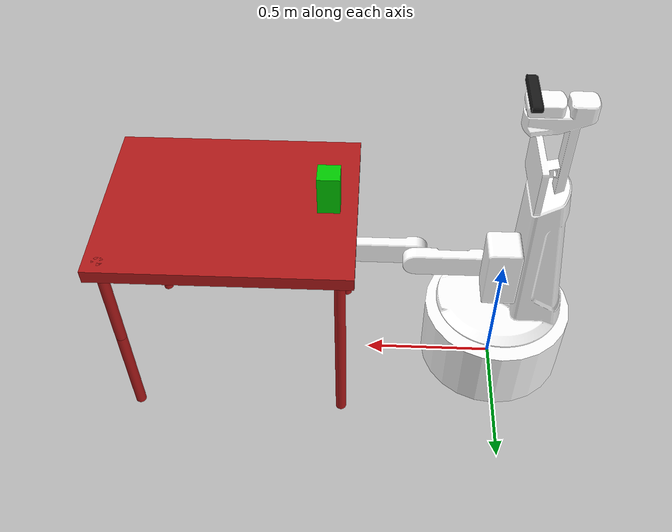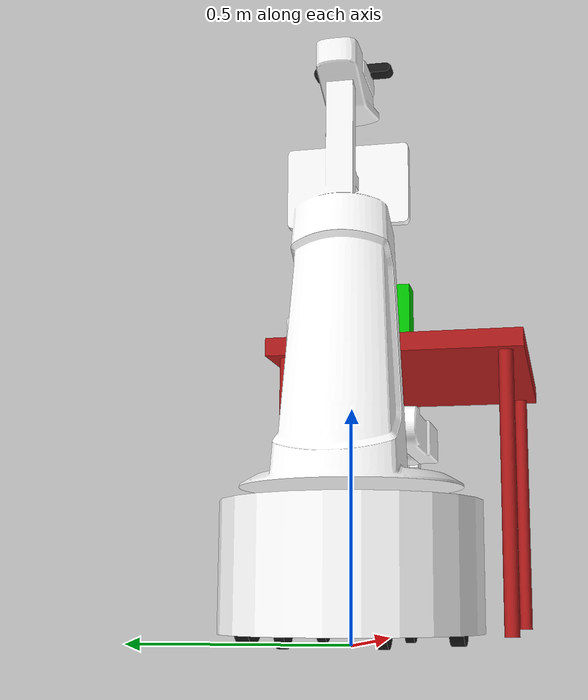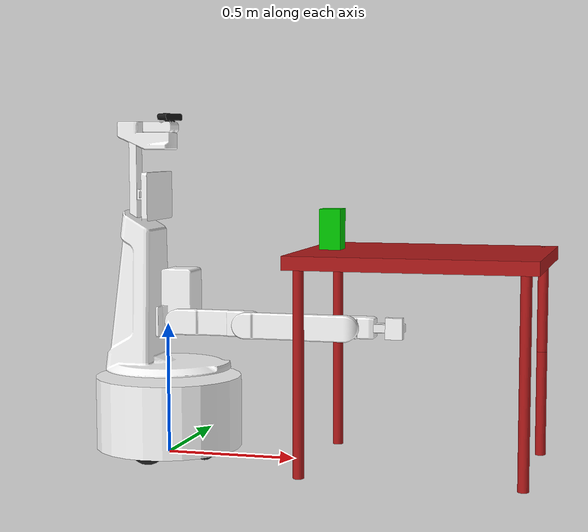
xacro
<?xml version="1.0" ?>
<robot name="korus" xmlns:xacro="http://www.ros.org/wiki/xacro">
  <xacro:include filename="$(find korus_meta)/resources/urdf/components/omni_drive_base.urdf.xacro"/>
  <xacro:include filename="$(find korus_meta)/resources/urdf/components/upper_body.urdf.xacro"/>
  <xacro:include filename="$(find korus_meta)/resources/urdf/components/arm.urdf.xacro"/>
  <xacro:include filename="$(find korus_meta)/resources/urdf/environment/table.urdf.xacro"/>

  <!-- ************************ Base model ************************* -->
  <xacro:omni_drive_base parent="local_manip_start" body_mount_link="base_link"/>

  <!-- ************************ Body model ************************* -->
  <xacro:upper_body body_mount_link="base_link" arm_mount_link="torso_lift_link"/>

  <!-- ************************ Arm model ************************* -->
  <xacro:arm arm_mount_link="torso_lift_link"/>

  <!-- ************************ Table model ************************* -->
  <xacro:table parent="local_manip_start"/>
</robot>

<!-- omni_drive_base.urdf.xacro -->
<robot xmlns:xacro="http://www.ros.org/wiki/xacro">
  <xacro:include filename="$(find korus_meta)/resources/urdf/components/materials.urdf.xacro"/>

  <!-- ************************** Properties ************************** -->
  <xacro:property name="wheel_bias" value="0.450"/>
  <xacro:property name="wheel_radius" value="0.075"/>
  <xacro:property name="caster_wheel_bias" value="0.2"/>
  <xacro:property name="caster_wheel_radius" value="0.040"/>

  <!-- ************************** Wheel macro ************************** -->
  <xacro:macro name="wheel" params="name parent length radius off_x off_y off_z type">
    <joint name="${name}_joint" type="${type}">
      <parent link="${parent}"/>
      <child link="${name}_link"/>
      <origin rpy="0 0 ${pi/2}" xyz="${off_x} ${off_y} ${off_z}"/>
    </joint>
    <link name="${name}_link">
      <visual>
        <geometry>
          <cylinder length="${length}" radius="${radius}"/>
        </geometry>
        <origin rpy="0 ${pi/2} 0" xyz="0 0 0"/>
        <material name="black">
          <color rgba="0.1 0.1 0.1 1"/>
        </material>
      </visual>
    </link>
  </xacro:macro>

  <!-- ************************** Differential drive base macro ************************** -->
  <xacro:macro name="omni_drive_base" params="parent body_mount_link">
    <link name="${parent}"/>
    <joint name="base_position_x" type="prismatic">
      <parent link="${parent}"/>
      <child link="base_position_x_link"/>
      <origin rpy="0 0 0" xyz="0.0 0.0 0.0"/>
      <axis xyz="1 0 0"/>
      <limit effort="10" lower="-2.0" upper="2.0" velocity="1.0"/>
    </joint>
    <link name="base_position_x_link"/>
    <joint name="base_position_y" type="prismatic">
      <parent link="base_position_x_link"/>
      <child link="base_position_y_link"/>
      <origin rpy="0 0 0" xyz="0.0 0.0 0.0"/>
      <axis xyz="0 1 0"/>
      <limit effort="10" lower="-2.0" upper="2.0" velocity="1.0"/>
    </joint>
    <link name="base_position_y_link"/>
    <joint name="base_heading" type="revolute">
      <parent link="base_position_y_link"/>
      <child link="${body_mount_link}"/>
      <origin rpy="0 0 0" xyz="0.0 0.0 0.075"/>
      <axis xyz="0 0 1"/>
      <limit effort="10" lower="-${pi}" upper="${pi}" velocity="1.0"/>
    </joint>
    <link name="${body_mount_link}">
      <visual>
        <origin rpy="0 0 0" xyz="0.0 0 0.0875"/>
         <geometry>
          <cylinder length="0.275" radius="0.280"/>
        </geometry>
        <xacro:insert_block name="material_white" />
      </visual>
      <collision>
        <origin rpy="0 0 0" xyz="0.0 0 0.0875"/>
         <geometry>
           <cylinder length="0.275" radius="0.280"/>
         </geometry>
         <xacro:insert_block name="material_white" />
      </collision>
    </link>
    <xacro:wheel name="wheel_left" parent="${body_mount_link}" length="0.03" radius="${wheel_radius}" off_x="0.0" off_y="${wheel_bias/2}" off_z="0.0" type="fixed"/>
    <xacro:wheel name="wheel_right" parent="${body_mount_link}" length="0.03" radius="${wheel_radius}" off_x="0.0" off_y="-${wheel_bias/2}" off_z="0.0" type="fixed"/>
    <xacro:wheel name="caster_front_left" parent="${body_mount_link}" length="0.02" radius="${caster_wheel_radius}" off_x="0.18" off_y="${caster_wheel_bias/2}" off_z="-0.035" type="fixed"/>
    <xacro:wheel name="caster_front_right" parent="${body_mount_link}" length="0.02" radius="${caster_wheel_radius}" off_x="0.18" off_y="-${caster_wheel_bias/2}" off_z="-0.035" type="fixed"/>
    <xacro:wheel name="caster_back_left" parent="${body_mount_link}" length="0.02" radius="${caster_wheel_radius}" off_x="-0.18" off_y="${caster_wheel_bias/2}" off_z="-0.035" type="fixed"/>
    <xacro:wheel name="caster_back_right" parent="${body_mount_link}" length="0.02" radius="${caster_wheel_radius}" off_x="-0.18" off_y="-${caster_wheel_bias/2}" off_z="-0.035" type="fixed"/>
  </xacro:macro>
</robot>

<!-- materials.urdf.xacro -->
<robot xmlns:xacro="http://www.ros.org/wiki/xacro">

	<!-- ************************ Properties ************************** -->
	<xacro:property name="pi" value="3.1415926535897931" />
	<xacro:property name="rad" value="0.0174532925199" /> <!-- pi/180 -->
	<xacro:property name="material_white">
	  <material name="white">
	    <color rgba="1 1 1 1"/>
	  </material>
	</xacro:property>
	<xacro:property name="material_orange">
	  <material name="orange">
	    <color rgba="1.0 0.7 0.0 1"/>
	  </material>
	</xacro:property>
	<xacro:property name="material_red">
	  <material name="red">
	    <color rgba="1.0 0.0 0.0 1"/>
	  </material>
	</xacro:property>
	<xacro:property name="material_grey_blue">
	  <material name="grey_blue">
	    <color rgba="0.4 0.4 1.0 1"/>
	  </material>
	</xacro:property>
	<xacro:property name="material_blue">
	  <material name="blue">
	    <color rgba="0.0 0.0 1.0 1"/>
	  </material>
	</xacro:property>
	<xacro:property name="material_green">
	  <material name="green">
	    <color rgba="0 .8 0 1"/>
	  </material>
	</xacro:property>
	<xacro:property name="material_grey">
	  <material name="grey">
	    <color rgba="0.7 0.7 0.7 1.0"/>
	  </material>
	</xacro:property>
	<xacro:property name="material_black">
	  <material name="black">
	    <color rgba="0.1 0.1 0.1 1"/>
	  </material>
	</xacro:property>
</robot>

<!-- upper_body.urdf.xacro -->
<robot xmlns:xacro="http://www.ros.org/wiki/xacro">
  <xacro:include filename="$(find korus_meta)/resources/urdf/components/materials.urdf.xacro"/>

  <!-- ************************** Robot body macro ************************** -->
  <xacro:macro name="upper_body" params="body_mount_link arm_mount_link">

    <!-- ************************** Torso *************************** -->
	  <joint name="torso_turn" type="revolute">
	    <parent link="${body_mount_link}"/>
	    <child link="torso_link"/>
	    <origin rpy="0 0 0" xyz="0.0 0.0 0.2665"/>
	    <axis xyz="0 0 1"/>
	    <limit effort="205.0" lower="-${186*rad}" upper="${160*rad}" velocity="${88.7*rad}"/>
	  </joint>
	  <link name="torso_link">
	    <visual>
	      <geometry>
          <mesh filename="package://korus_meta/resources/meshes/turret.dae" />
	      </geometry>
        <origin xyz="0.0 0.0 0.45885" rpy="0 0 0"/>
	      <xacro:insert_block name="material_white" />
	    </visual>
      <collision> <!-- torso turn disk -->
         <geometry>
          <cylinder length="0.025" radius="0.278"/>
        </geometry>
        <origin xyz="0.0 0.0 0.0" rpy="0 0 0"/>
      </collision>
      <collision> <!-- back -->
        <geometry>
           <box size="0.204 0.25746 0.57888" />
        </geometry>
        <origin xyz="-0.13786 0.0 0.30194" rpy="0 0 0"/>
      </collision>
      <collision> <!-- neck -->
        <geometry>
          <box size="0.030 0.060 0.23262"/>
        </geometry>
        <origin xyz="-0.12536  0.0 0.70769" rpy="0 0 0"/>
      </collision>
      <collision> <!-- tablet -->
        <geometry>
          <box size="0.022 0.270 0.1812"/>
        </geometry>
        <origin xyz="-0.04036 0.0 0.6495" rpy="0 0 0"/>
      </collision>
      <collision> <!-- head -->
        <geometry>
          <box size="0.227 0.11872 0.0645" />
        </geometry>
        <origin xyz="-0.07586 0.0 0.85625" rpy="0 0 0"/>
      </collision>
      <collision> <!-- stargazer -->
        <geometry>
          <box size="0.09065 0.090 0.0417" />
        </geometry>
        <origin xyz="-0.14403 0.0 0.909" rpy="0 0 0"/>
      </collision>
	  </link>

    <!-- (Fixed) Reference torso for motion retargeting -->
    <joint name="torso_mo_ret_joint" type="fixed">
      <parent link="${body_mount_link}"/>
      <child link="torso_mo_ret_link"/>
      <origin rpy="0 0 0" xyz="0.0 0.0 0.2665"/>
      <axis xyz="0 0 1"/>
    </joint>
    <link name="torso_mo_ret_link"/>

	  <joint name="turret" type="fixed">
	    <parent link="torso_link"/>
	    <child link="turret_link"/>
	    <origin xyz="-0.13786 0.0 0.0" rpy="0 0 0"/>
	  </joint>
	  <link name="turret_link"/>

	  <joint name="torso_lift_offset" type="fixed">
	    <parent link="turret_link"/>
	    <child link="torso_lift_offset_link"/>
	    <origin xyz="0.10361 0.010 0.170" rpy="0 0 0"/>
	  </joint>
	  <link name="torso_lift_offset_link"/>

	  <joint name="torso_lift" type="prismatic">
	    <parent link="torso_lift_offset_link"/>
	    <child link="${arm_mount_link}"/>
	    <origin xyz="0 0 0" rpy="0 0 0"/>
	    <axis xyz="0 0 1"/>
	    <limit effort="26.0" lower="-0.002" upper="0.1750" velocity="0.038"/>
	  </joint>
	  <link name="${arm_mount_link}"/>

    <!-- ************************** Neck with tablet ************************** -->
	  <joint name="neck" type="fixed">
	    <parent link="turret_link"/>
	    <child link="neck_link"/>
	    <origin xyz="0.0125 0.0 0.59138" rpy="0 0 0"/>
	  </joint>
	  <link name="neck_link"/>

    <joint name="tablet" type="fixed">
      <parent link="neck_link"/>
      <child link="tablet_link"/>
      <origin xyz="0.085 0.0 0.05812" rpy="0 0 0"/>
    </joint>
    <link name="tablet_link"/>

	  <!-- ************************** Head with ASUS Xtion Pro Live and Stargazer ************************** -->
    <joint name="head" type="fixed">
      <parent link="neck_link"/>
      <child link="head_link"/>
      <origin xyz="0.0 0.0 0.23262" rpy="0 0 0"/>
    </joint>
    <link name="head_link"/>

    <joint name="stargazer" type="fixed">
      <parent link="head_link"/>
      <child link="stargazer_link"/>
      <origin xyz="-0.040 0.0 0.1025" rpy="0 0 ${pi}"/>
    </joint>
    <link name="stargazer_link"/>

    <joint name="head_pan" type="revolute">
      <parent link="head_link"/>
      <child link="head_pan_link"/>
      <origin xyz="0.133 0.0 0.0645" rpy="0 0 0"/>
      <axis xyz="0 0 1"/>
      <limit effort="9.0" lower="${-137*rad}" upper="${137*rad}" velocity="${476*rad}"/>
    </joint>
    <link name="head_pan_link">
      <visual>
        <geometry>
          <mesh filename="package://korus_meta/resources/meshes/head_pan.dae" />
        </geometry>
        <origin xyz="-0.0339 0.0 0.02085" rpy="0.0 0.0 0.0"/>
        <xacro:insert_block name="material_white"/>
      </visual>
      <collision>
        <geometry>
          <box size="0.1122 0.090 0.0417"/>
        </geometry>
        <origin xyz="-0.0339 0.0 0.02085" rpy="0.0 0.0 0.0"/>
      </collision>
    </link>

    <joint name="head_tilt" type="revolute">
      <parent link="head_pan_link"/>
      <child link="head_tilt_link"/>
      <origin xyz="0.01 0.0 0.025" rpy="${pi/2} 0 0"/> <!-- x original 0.013 -->
      <axis xyz="0 0 1"/>
      <limit effort="9.0" lower="${-92*rad}" upper="${32*rad}" velocity="${476*rad}"/>
    </joint>
    <link name="head_tilt_link"/>

    <joint name="sensor_3d" type="fixed">
      <parent link="head_tilt_link"/>
      <child link="sensor_3d_link"/>
      <!-- adds to yaw, because the xtion is mounted on its surface which is inclined (approx. 2 deg) -->
      <origin xyz="0.0 0.0 0.0" rpy="${-pi/2} 0 0.034"/>
    </joint>
    <link name="sensor_3d_link">
      <visual>
        <geometry>
           <mesh filename="package://korus_meta/resources/meshes/xtionpro_w_mount.dae"/>
        </geometry>
        <origin xyz="0.0 0.0 0.0225" rpy="0 0 0" />
        <xacro:insert_block name="material_black"/>
      </visual>
      <collision>
        <origin xyz="0.0 0.0032 0.0291" rpy="0 0 0" />
        <geometry>
          <box size="0.036 0.180 0.0298"/>
        </geometry>
      </collision>
    </link>

    <joint name="sensor_3d_fixed" type="fixed"> <!-- used for head pose control -->
      <parent link="head_link"/>
      <child link="sensor_3d_fixed_link"/>
      <origin xyz="0.143 0.0 0.1225" rpy="0 0 0"/>
    </joint>
    <link name="sensor_3d_fixed_link"/>

    <joint name="sensor_3d_depth_joint" type="fixed">
      <origin xyz="0.019 0.0435 0.0315" rpy="0 0 0" />
      <parent link="sensor_3d_link" />
      <child link="sensor_3d_depth_frame" />
    </joint>
    <link name="sensor_3d_depth_frame"/>

    <joint name="sensor_3d_depth_optical_joint" type="fixed">
      <origin xyz="0 0 0" rpy="${-pi/2} 0 ${-pi/2}" />
      <parent link="sensor_3d_depth_frame" />
      <child link="sensor_3d_depth_optical_frame" />
    </joint>
    <link name="sensor_3d_depth_optical_frame"/>

    <joint name="sensor_3d_rgb_joint" type="fixed">
      <origin xyz="0.0 0.015 0.0315" rpy="0 0 0" />
      <parent link="sensor_3d_link" />
      <child link="sensor_3d_rgb_frame" />
    </joint>
    <link name="sensor_3d_rgb_frame"/>

    <joint name="sensor_3d_rgb_optical_joint" type="fixed">
      <origin xyz="0 0 0" rpy="${-pi/2} 0 ${-pi/2}" />
      <parent link="sensor_3d_rgb_frame" />
      <child link="sensor_3d_rgb_optical_frame" />
    </joint>
    <link name="sensor_3d_rgb_optical_frame"/>
  </xacro:macro>
</robot>

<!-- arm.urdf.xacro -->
<robot xmlns:xacro="http://www.ros.org/wiki/xacro">
  <xacro:include filename="$(find korus_meta)/resources/urdf/components/materials.urdf.xacro"/>

  <!-- ************************ Arm macro ************************* -->
  <xacro:macro name="arm" params="arm_mount_link">
    <joint name="arm_mount" type="fixed">
      <parent link="${arm_mount_link}"/>
      <child link="shoulder_link"/>
      <origin xyz="0.08225 0.0 0.0" rpy="${pi/2} 0.0 0.0"/>
    </joint>
    <link name="shoulder_link">
      <visual>
        <geometry>
          <mesh filename="package://korus_meta/resources/meshes/shoulder.dae" />
        </geometry>
        <origin xyz="-0.020 0.070 -0.034" rpy="${-pi/2} 0 0"/>
        <xacro:insert_block name="material_white"/>
      </visual>
      <collision>
        <geometry>
          <box size="0.122 0.254 0.131"/>
        </geometry>
        <origin xyz="-0.020 0.070 -0.0655" rpy="0 0 0"/>
       </collision>
    </link>

	  <joint name="shoulder" type="revolute">
	    <parent link="shoulder_link"/>
	    <child link="upper_arm_link"/>
      <origin xyz="0 0 0" rpy="0 0 0"/>
	    <axis xyz="0 0 1"/>
	    <limit effort="250.0" lower="${-70*rad}" upper="${92*rad}" velocity="${73*rad}"/>
	  </joint>
	  <link name="upper_arm_link">
	    <visual>
	      <geometry>
          <mesh filename="package://korus_meta/resources/meshes/upper_arm.dae" />
	      </geometry>
	      <origin xyz="0.1425 0.001 0.0275" rpy="${pi/2} ${pi} ${pi/2}"/>
	      <xacro:insert_block name="material_white" />
	    </visual>
      <collision>
        <geometry>
          <box size="0.378 0.095 0.055"/>
        </geometry>
        <origin xyz="0.145 0.0 0.028" rpy="0 0 0"/>
       </collision>
	  </link>

	  <joint name="elbow" type="revolute">
	    <parent link="upper_arm_link"/>
	    <child link="lower_arm_link"/>
	    <origin xyz="0.283 0.0 0.055" rpy="0 0 0"/>
	    <axis xyz="0 0 1"/>
	    <limit effort="200.0" lower="${-180*rad}" upper="${92*rad}" velocity="${91*rad}"/>
	  </joint>
	  <link name="lower_arm_link">
	    <visual>
	      <geometry>
          <mesh filename="package://korus_meta/resources/meshes/lower_arm.dae" />
	      </geometry>
	      <origin xyz="0.19 0.002 0.027" rpy="${pi/2} ${pi} ${pi/2}"/>
	      <xacro:insert_block name="material_white" />
	    </visual>
      <collision>
        <geometry>
          <box size="0.477 0.095 0.057"/>
        </geometry>
        <origin xyz="0.19426 0.00 0.0285" rpy="0 0 0"/>
      </collision>
	  </link>

	  <joint name="wrist" type="revolute">
	    <parent link="lower_arm_link"/>
	    <child link="wrist_link"/>
	    <origin xyz="0.382 0.0 0.0" rpy="0 0 0"/>
	    <axis xyz="0 0 1"/>
	    <limit effort="51.0" lower="${-100*rad}" upper="${100*rad}" velocity="${72.5*rad}"/>
	  </joint>
	  <link name="wrist_link"/>

  	<!--   Endeffector (gripper)  -->
	  <joint name="palm" type="fixed">
	    <parent link="wrist_link"/>
	    <child link="palm_link"/>
	    <origin xyz="0.0 0.0 -0.045" rpy="0 0 0"/>
	  </joint>
	  <link name="palm_link">
	    <visual>
	      <geometry>
          <mesh filename="package://korus_meta/resources/meshes/palm.dae" />
	      </geometry>
	      <origin xyz="0.0395 0.001 0.0025" rpy="${-pi/2} 0 0"/>
        <xacro:insert_block name="material_white"/>
      </visual>
      <collision>
        <geometry>
          <cylinder length="0.0854" radius="0.038"/>
        </geometry>
        <origin xyz="0.0 0.0 0.0035" rpy="0 0 0"/>
      </collision>
      <collision>
        <geometry>
          <box size="0.1044 0.077 0.0804"/>
        </geometry>
        <origin xyz="0.0522 0.0 0.0" rpy="0 0 0"/>
      </collision>
	  </link>

    <joint name="gripper_center" type="fixed">
      <parent link="palm_link"/>
      <child link="gripper_center_link"/>
      <origin xyz="0.15 0.0 0.0" rpy="0 0 0"/>
    </joint>
    <link name="gripper_center_link"/>

	  <joint name="gripper" type="revolute">
	    <parent link="palm_link"/>
	    <child link="gripper_link"/>
	    <origin xyz="0.08 0.0 0.0" rpy="${-pi/2} 0 0"/>
	    <axis xyz="0 0 1"/>
	    <limit effort="33.4" lower="${-2*rad}" upper="${78*rad}" velocity="${80.8*rad}"/>
	  </joint>
	  <link name="gripper_link"/>

    <joint name="finger_left_knuckle_1" type="revolute">
      <parent link="palm_link"/>
      <child link="finger_left_knuckle_1_link"/>
      <origin xyz="0.0925 0.0 -0.022" rpy="${pi/2} ${-10*rad} 0"/>
      <axis xyz="0 0 1"/>
      <limit effort="33.4" lower="${-78*rad}" upper="${2*rad}" velocity="${80.8*rad}"/>
    </joint>
	  <link name="finger_left_knuckle_1_link">
      <visual>
        <geometry>
          <mesh filename="package://korus_meta/resources/meshes/finger01.dae" />
        </geometry>
	      <origin xyz="0.02975 0.0 0.0" rpy="0 0 0"/>
	      <xacro:insert_block name="material_white"/>
	    </visual>
      <collision>
        <geometry>
          <box size="0.0595 0.0247 0.0306"/>
        </geometry>
        <origin xyz="0.02975 0.0 0.0" rpy="0 0 0"/>
      </collision>
	  </link>
    <joint name="finger_left_knuckle_2" type="revolute">
      <parent link="finger_left_knuckle_1_link"/>
      <child link="finger_left_knuckle_2_link"/>
      <origin xyz="0.051 0.0 0.0" rpy="0 0 ${-10*rad}"/>
      <axis xyz="0 0 1"/>
      <limit effort="33.4" lower="${-2*rad}" upper="${78*rad}" velocity="${80.8*rad}"/>
    </joint>
    <link name="finger_left_knuckle_2_link">
      <visual>
        <geometry>
          <mesh filename="package://korus_meta/resources/meshes/finger02.dae" />
        </geometry>
        <origin xyz="0.0325 0.0 0.0" rpy="0 0 0"/>
        <xacro:insert_block name="material_white"/>
      </visual>
      <collision>
        <geometry>
          <box size="0.065 0.0247 0.0306"/>
        </geometry>
        <origin xyz="0.0325 0.0 0.0" rpy="0 0 0"/>
      </collision>
    </link>
    <joint name="finger_left_tip" type="fixed">
      <parent link="finger_left_knuckle_2_link"/>
      <child link="finger_left_tip_link"/>
      <origin xyz="0.065 0.0 0.0" rpy="0 0 0"/>
    </joint>
    <link name="finger_left_tip_link"/>

    <joint name="finger_right_knuckle_1" type="revolute">
      <parent link="palm_link"/>
      <child link="finger_right_knuckle_1_link"/>
      <origin xyz="0.0925 0.0 0.022" rpy="${-pi/2} ${10*rad} 0.0"/>
      <axis xyz="0 0 1"/>
      <limit effort="33.4" lower="${-78*rad}" upper="${2*rad}" velocity="${80.8*rad}"/>
    </joint>
    <link name="finger_right_knuckle_1_link">
      <visual>
        <geometry>
          <mesh filename="package://korus_meta/resources/meshes/finger01.dae" />
        </geometry>
        <origin xyz="0.02975 0.0 0.0" rpy="0 0 0"/>
        <xacro:insert_block name="material_white"/>
      </visual>
      <collision>
        <geometry>
          <box size="0.0595 0.0247 0.0306"/>
        </geometry>
        <origin xyz="0.02975 0.0 0.0" rpy="0 0 0"/>
      </collision>
    </link>
    <joint name="finger_right_knuckle_2" type="revolute">
      <parent link="finger_right_knuckle_1_link"/>
      <child link="finger_right_knuckle_2_link"/>
      <origin xyz="0.051 0.0 0.0" rpy="0 0 ${-10*rad}"/>
      <axis xyz="0 0 1"/>
      <limit effort="33.4" lower="${-2*rad}" upper="${78*rad}" velocity="${80.8*rad}"/>
    </joint>
    <link name="finger_right_knuckle_2_link">
      <visual>
        <geometry>
          <box size="0.065 0.0247 0.08"/>
        </geometry>
        <origin xyz="0.0325 0.0 0.0" rpy="0 0 0"/>
        <xacro:insert_block name="material_white"/>
      </visual>
      <collision>
        <geometry>
          <box size="0.065 0.0247 0.08"/>
        </geometry>
        <origin xyz="0.0325 0.0 0.0" rpy="0 0 0"/>
      </collision>
    </link>
    <joint name="finger_right_tip" type="fixed">
      <parent link="finger_right_knuckle_2_link"/>
      <child link="finger_right_tip_link"/>
      <origin xyz="0.065 0.0 0.0" rpy="0 0 0"/>
    </joint>
    <link name="finger_right_tip_link"/>

    <joint name="gripper_camera" type="fixed">
      <parent link="palm_link"/>
      <child link="gripper_camera_link"/>
      <origin xyz="0.10015 0 0" rpy="0.0 ${pi/2} 0.0"/>
    </joint>
    <link name="gripper_camera_link">
      <visual>
        <geometry>
          <cylinder length="0.01" radius="0.01"/>
        </geometry>
        <origin xyz="0.0 0.0 0.0" rpy="0 0 0"/>
        <xacro:insert_block name="material_black"/>
      </visual>
      <collision>
        <geometry>
          <cylinder length="0.01" radius="0.01"/>
        </geometry>
        <origin xyz="0.0 0.0 0.0" rpy="0 0 0"/>
      </collision>
    </link>
  </xacro:macro>
</robot>

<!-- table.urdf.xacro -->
<robot xmlns:xacro="http://www.ros.org/wiki/xacro">

    <!-- ************************ Properties ************************* -->
    <xacro:property name="pi" value="3.1415926535897931" />
    <xacro:property name="material_white">
      <material name="white">
        <color rgba="1 1 1 1"/>
      </material>
    </xacro:property>
    <xacro:property name="material_orange">
      <material name="orange">
        <color rgba="1.0 0.7 0.0 1"/>
      </material>
    </xacro:property>
    <xacro:property name="material_red">
      <material name="red">
        <color rgba="1.0 0.0 0.0 1"/>
      </material>
    </xacro:property>
    <xacro:property name="material_grey_blue">
      <material name="grey_blue">
        <color rgba="0.4 0.4 1.0 1"/>
      </material>
    </xacro:property>
    <xacro:property name="material_blue">
      <material name="blue">
        <color rgba="0.0 0.0 1.0 1"/>
      </material>
    </xacro:property>
    <xacro:property name="material_green">
      <material name="green">
        <color rgba="0 .8 0 1"/>
      </material>
    </xacro:property>
    <xacro:property name="material_grey">
      <material name="grey">
        <color rgba="0.7 0.7 0.7 1.0"/>
      </material>
    </xacro:property>
    <xacro:property name="material_black">
      <material name="black">
        <color rgba="0.1 0.1 0.1 1"/>
      </material>
    </xacro:property>
    <xacro:property name="material_brown">
      <material name="black">
        <color rgba="0.7 0.1 0.1 1"/>
      </material>
    </xacro:property>

  <!-- ************************ Table macro ************************* -->
  <xacro:macro name="table" params="parent">
	  <joint name="table_bottom_center_joint" type="fixed">
	    <parent link="${parent}"/>
	    <child link="table_bottom_center_link"/>
	    <origin xyz="1.00 0.0 0" rpy="0 0 0"/>
	  </joint>
	  <link name="table_bottom_center_link">
	  </link>

    <joint name="table_foot_front_right_bottom_joint" type="fixed">
      <parent link="table_bottom_center_link"/>
      <child link="table_foot_front_right_bottom_link"/>
      <origin xyz="0.4 0.3 0.0" rpy="0 0 0"/>
    </joint>
    <link name="table_foot_front_right_bottom_link">
      <visual>
        <origin rpy="0 0 0" xyz="0.0 0 0.20"/>
        <geometry>
          <cylinder length="0.40" radius="0.02"/>
        </geometry>
        <xacro:insert_block name="material_brown" />
      </visual>
	    <collision>
        <origin rpy="0 0 0" xyz="0.0 0 0.20"/>
        <geometry>
          <cylinder length="0.40" radius="0.02"/>
        </geometry>
	    </collision>
    </link>
	  <joint name="table_foot_front_right_top_joint" type="prismatic">
	    <parent link="table_foot_front_right_bottom_link"/>
	    <child link="table_foot_front_right_link"/>
	    <origin xyz="0 0 0.4" rpy="0 0 0"/>
      <axis xyz="0 0 1"/>
      <limit effort="10" lower="-0.4" upper="0.0" velocity="0.4"/>
	  </joint>
	  <link name="table_foot_front_right_link">
		  <visual>
		    <origin rpy="0 0 0" xyz="0.0 0 0.20"/>
		    <geometry>
		      <cylinder length="0.40" radius="0.02"/>
		    </geometry>
		    <xacro:insert_block name="material_brown" />
		  </visual>
      <collision>
        <origin rpy="0 0 0" xyz="0.0 0 0.20"/>
        <geometry>
          <cylinder length="0.40" radius="0.02"/>
        </geometry>
      </collision>
	  </link>

		<joint name="table_foot_front_left_joint" type="fixed">
		<parent link="table_bottom_center_link"/>
		<child link="table_foot_front_left_link"/>
		<origin xyz="0.4 -0.3 0" rpy="0 0 0"/>
	  </joint>
	  <link name="table_foot_front_left_link">
	    <visual>
	      <origin rpy="0 0 0" xyz="0.0 0 0.375"/>
	      <geometry>
	        <cylinder length="0.75" radius="0.02"/>
	      </geometry>
	      <xacro:insert_block name="material_brown" />
	    </visual>
      <collision>
        <origin rpy="0 0 0" xyz="0.0 0 0.375"/>
        <geometry>
          <cylinder length="0.75" radius="0.02"/>
        </geometry>
      </collision>
	  </link>

    <joint name="table_foot_back_right_joint" type="fixed">
	    <parent link="table_bottom_center_link"/>
	    <child link="table_foot_back_right_link"/>
	    <origin xyz="-0.4 0.3 0" rpy="0 0 0"/>
    </joint>
    <link name="table_foot_back_right_link">
      <visual>
        <geometry>
          <cylinder length="0.75" radius="0.02"/>
        </geometry>
        <origin rpy="0 0 0" xyz="0.0 0 0.375"/>
        <xacro:insert_block name="material_brown" />
      </visual>
      <collision>
        <geometry>
          <cylinder length="0.75" radius="0.02"/>
        </geometry>
        <origin rpy="0 0 0" xyz="0.0 0 0.375"/>
      </collision>
    </link>

    <joint name="table_foot_back_left_joint" type="fixed">
	    <parent link="table_bottom_center_link"/>
	    <child link="table_foot_back_left_link"/>
	    <origin xyz="-0.4 -0.3 0" rpy="0 0 0"/>
    </joint>
    <link name="table_foot_back_left_link">
      <visual>
        <geometry>
          <cylinder length="0.75" radius="0.02"/>
        </geometry>
        <origin rpy="0 0 0" xyz="0.0 0 0.375"/>
        <xacro:insert_block name="material_brown" />
      </visual>
      <collision>
        <geometry>
          <cylinder length="0.75" radius="0.02"/>
        </geometry>
        <origin rpy="0 0 0" xyz="0.0 0 0.375"/>
      </collision>
    </link>

    <joint name="table_top_center_joint" type="prismatic">
      <parent link="table_bottom_center_link"/>
      <child link="table_top_center_link"/>
      <origin xyz="0.0 0.0 0.80" rpy="0 0 0"/>
      <axis xyz="0 0 1"/>
      <limit effort="10" lower="-0.4" upper="0.0" velocity="0.4"/>
    </joint>
    <link name="table_top_center_link">
      <visual>
        <geometry>
          <box size="0.90 0.70 0.05" />
        </geometry>
        <origin rpy="0 0.0 0" xyz="0.0 0.0 -0.025"/>
        <xacro:insert_block name="material_brown" />
      </visual>
      <collision>
        <geometry>
          <box size="0.90 0.70 0.05" />
        </geometry>
        <origin rpy="0 0.0 0" xyz="0.0 0.0 -0.025"/>
      </collision>
    </link>

    <!-- Object on table -->
	  <joint name="table_object" type="fixed">
	    <parent link="table_top_center_link"/>
	    <child link="table_object_link"/>
	    <origin xyz="-0.35 0.0 0.0" rpy="0 0 0" />
	  </joint>
	  <link name="table_object_link">
	    <visual>
	      <geometry>
	        <box size="0.08 0.08 0.15"/>
	      </geometry>
	      <origin xyz="0.0 0.0 0.075" rpy="0 0 0"/>
	      <xacro:insert_block name="material_green" />
	    </visual>
	    <collision>
	      <geometry>
	        <box size="0.08 0.08 0.15"/>
	      </geometry>
	      <origin xyz="0.0 0.0 0.075" rpy="0 0 0"/>
	      <xacro:insert_block name="material_green" />
	    </collision>
	  </link>
  </xacro:macro>
</robot>
